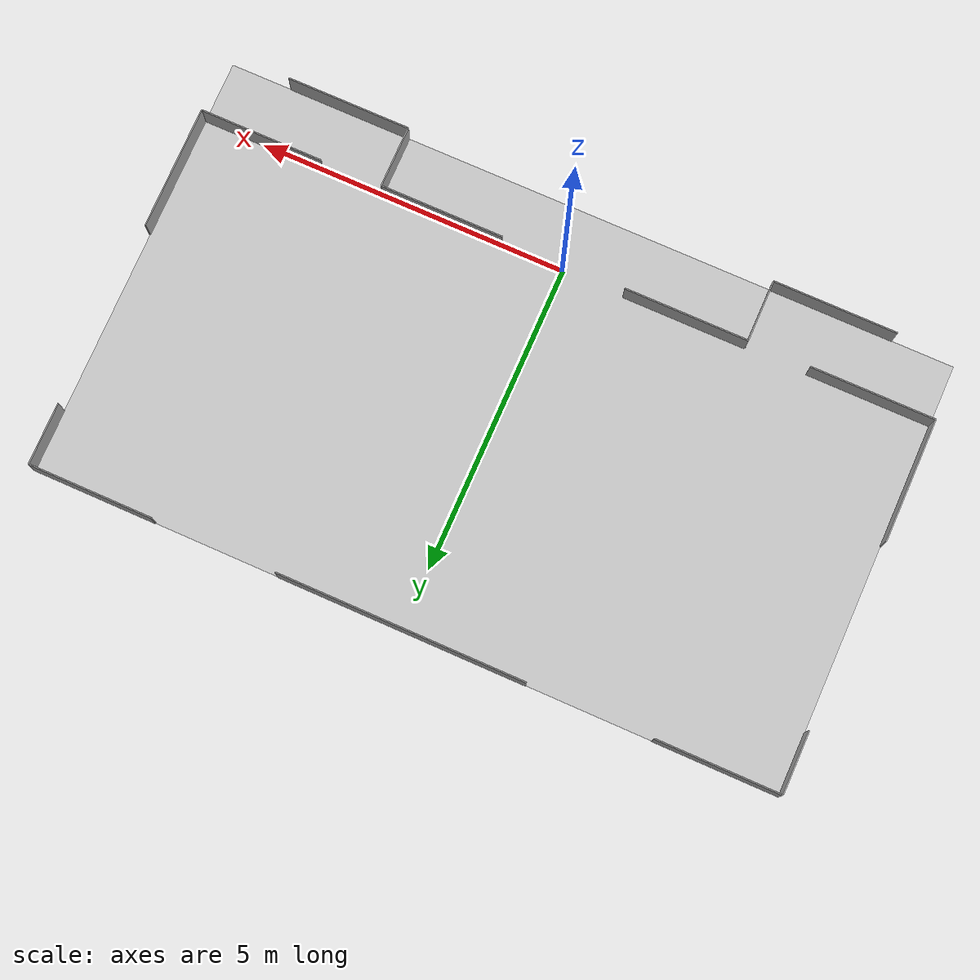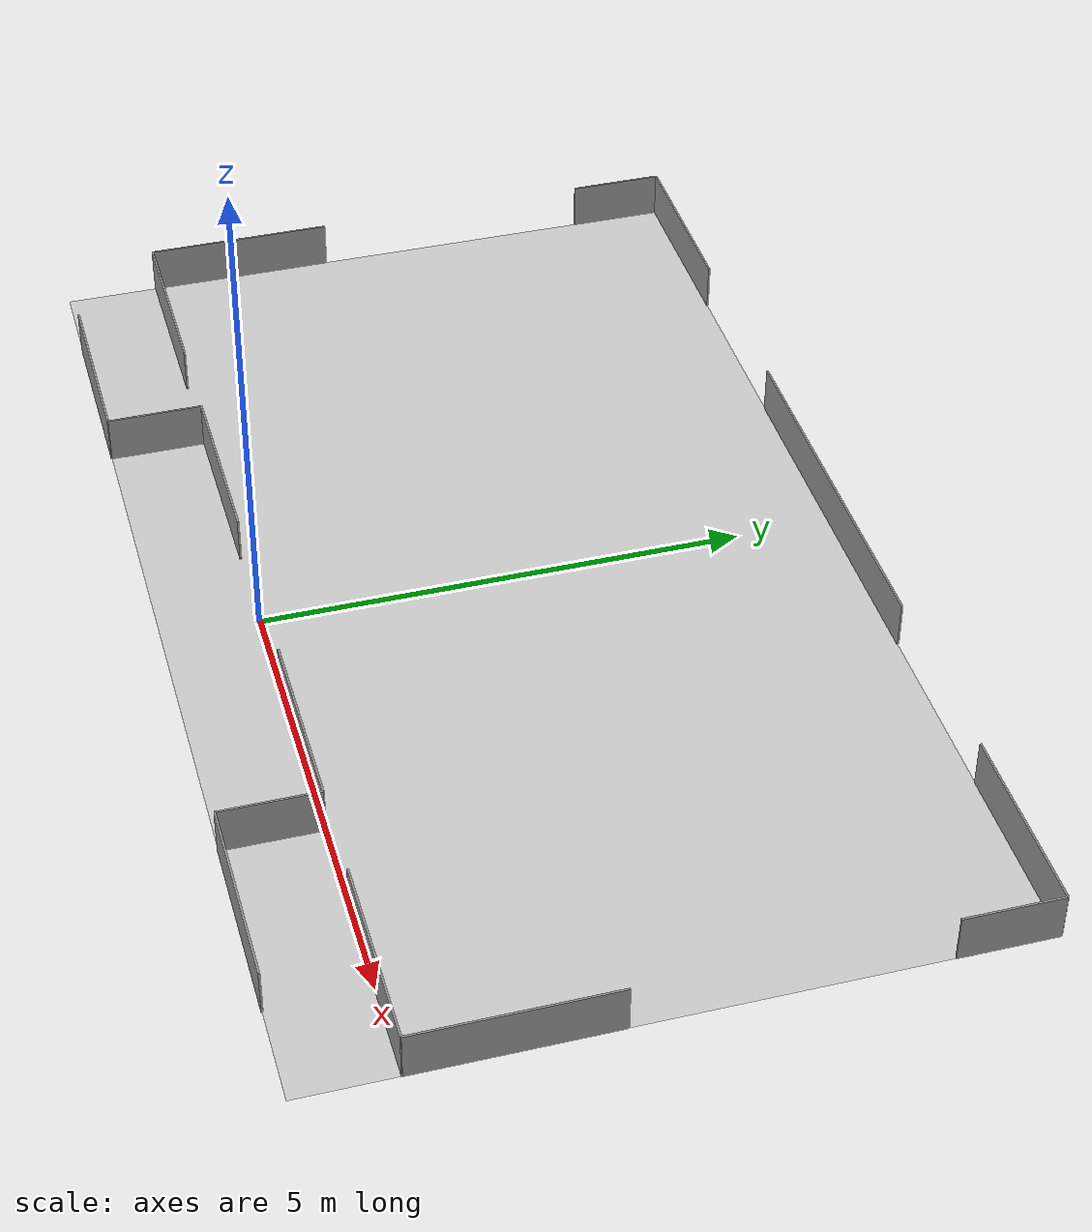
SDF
<?xml version="1.0" ?>
<sdf version="1.5">
  <model name="Logistics League Field 2016">
    <pose>0 2.5 0 0 0 0</pose>
    <static>true</static>
    <link name="field">
      <pose>0 0 0.01 0 0 0</pose>
      <collision name="collision">
        <geometry>
          <plane>
            <normal>0 0 1</normal>
            <size>12 7</size>
          </plane>
        </geometry>
        <surface>
          <friction>
            <ode>
              <mu>100</mu>
              <mu2>50</mu2>
            </ode>
          </friction>
        </surface>
      </collision>
      <visual name="carpet">
        <cast_shadows>false</cast_shadows>
        <geometry>
          <plane>
            <normal>0 0 1</normal>
            <size>12 7</size>
          </plane>
        </geometry>
        <material>
          <script>
            <uri>model://logistics_league_field/materials/scripts/</uri>
            <uri>model://logistics_league_field/materials/textures/</uri>
            <name>Logistics_League_Field/Image</name>
          </script>
        </material>
      </visual>
    </link>

    <link name="wall_bottom_middle_left">
      <pose>-2 -2.5 0.25 0 0 1.570796327</pose>
      <visual name="wall_bottom_middle_left-visual">
        <geometry>
          <box>
			<size>.02 2 .5</size>
          </box>
        </geometry>
        <cast_shadows>false</cast_shadows>
        <material>
	  <script>
	    <uri>file://media/materials/scripts/gazebo.material</uri>
	    <name>Gazebo/Grey</name>
	  </script>
        </material>
      </visual>
      <collision name="wall_bottom_middle_left-collision">
        <geometry>
		    <box>
			  <size>.02 2 .5</size>
		    </box>
        </geometry>
      </collision>
    </link>

    <link name="wall_bottom_middle_left_down">
      <pose>-3 -3 0.25 0 0 0</pose>
      <visual name="wall_bottom_middle_left_down-visual">
        <geometry>
          <box>
			<size>.02 1 .5</size>
          </box>
        </geometry>
        <cast_shadows>false</cast_shadows>
        <material>
	  <script>
	    <uri>file://media/materials/scripts/gazebo.material</uri>
	    <name>Gazebo/Grey</name>
	  </script>
        </material>
      </visual>
      <collision name="wall_bottom_middle_left_down-collision">
        <geometry>
		    <box>
			  <size>.02 1 .5</size>
		    </box>
        </geometry>
      </collision>
    </link>

    <link name="wall_bottom_middle_left_outer">
      <pose>-4 -3.5 0.25 0 0 1.570796327</pose>
      <visual name="wall_bottom_middle_left_outer-visual">
        <geometry>
          <box>
			<size>.02 2 .5</size>
          </box>
        </geometry>
        <cast_shadows>false</cast_shadows>
        <material>
	  <script>
	    <uri>file://media/materials/scripts/gazebo.material</uri>
	    <name>Gazebo/Grey</name>
	  </script>
        </material>
      </visual>
      <collision name="wall_bottom_middle_left_outer-collision">
        <geometry>
		    <box>
			  <size>.02 2 .5</size>
		    </box>
        </geometry>
      </collision>
    </link>

    <link name="wall_bottom_left">
      <pose>-5 -2.5 0.25 0 0 1.570796327</pose>
      <visual name="wall_bottom_left-visual">
        <geometry>
          <box>
			<size>.02 2 .5</size>
          </box>
        </geometry>
        <cast_shadows>false</cast_shadows>
        <material>
	  <script>
	    <uri>file://media/materials/scripts/gazebo.material</uri>
	    <name>Gazebo/Grey</name>
	  </script>
        </material>
      </visual>
      <collision name="wall_bottom_left-collision">
        <geometry>
		    <box>
			  <size>.02 2 .5</size>
		    </box>
        </geometry>
      </collision>
    </link>

    <link name="wall_bottom_middle_right">
      <pose>2 -2.5 0.25 0 0 1.570796327</pose>
      <visual name="wall_bottom_middle_right-visual">
        <geometry>
          <box>
			<size>.02 2 .5</size>
          </box>
        </geometry>
        <cast_shadows>false</cast_shadows>
        <material>
	  <script>
	    <uri>file://media/materials/scripts/gazebo.material</uri>
	    <name>Gazebo/Grey</name>
	  </script>
        </material>
      </visual>
      <collision name="wall_bottom_middle_right-collision">
        <geometry>
		    <box>
			  <size>.02 2 .5</size>
		    </box>
        </geometry>
      </collision>
    </link>

    <link name="wall_bottom_middle_right_down">
      <pose>3 -3 0.25 0 0 0</pose>
      <visual name="wall_bottom_middle_right_down-visual">
        <geometry>
          <box>
			<size>.02 1 .5</size>
          </box>
        </geometry>
        <cast_shadows>false</cast_shadows>
        <material>
	  <script>
	    <uri>file://media/materials/scripts/gazebo.material</uri>
	    <name>Gazebo/Grey</name>
	  </script>
        </material>
      </visual>
      <collision name="wall_bottom_middle_right_down-collision">
        <geometry>
		    <box>
			  <size>.02 1 .5</size>
		    </box>
        </geometry>
      </collision>
    </link>

    <link name="wall_bottom_middle_right_outer">
      <pose>4 -3.5 0.25 0 0 1.570796327</pose>
      <visual name="wall_bottom_middle_right_outer-visual">
        <geometry>
          <box>
			<size>.02 2 .5</size>
          </box>
        </geometry>
        <cast_shadows>false</cast_shadows>
        <material>
	  <script>
	    <uri>file://media/materials/scripts/gazebo.material</uri>
	    <name>Gazebo/Grey</name>
	  </script>
        </material>
      </visual>
      <collision name="wall_bottom_middle_right_outer-collision">
        <geometry>
		    <box>
			  <size>.02 2 .5</size>
		    </box>
        </geometry>
      </collision>
    </link>

    <link name="wall_bottom_right">
      <pose>5 -2.5 0.25 0 0 1.570796327</pose>
      <visual name="wall_bottom_right-visual">
        <geometry>
          <box>
			<size>.02 2 .5</size>
          </box>
        </geometry>
        <cast_shadows>false</cast_shadows>
        <material>
	  <script>
	    <uri>file://media/materials/scripts/gazebo.material</uri>
	    <name>Gazebo/Grey</name>
	  </script>
        </material>
      </visual>
      <collision name="wall_bottom_right-collision">
        <geometry>
		    <box>
			  <size>.02 2 .5</size>
		    </box>
        </geometry>
      </collision>
    </link>

    <link name="wall_left_bottom">
      <pose>-6 -1.5 0.25 0 0 0</pose>
      <visual name="wall_left_bottom-visual">
        <geometry>
          <box>
			<size>.02 2 .5</size>
          </box>
        </geometry>
        <cast_shadows>false</cast_shadows>
        <material>
	  <script>
	    <uri>file://media/materials/scripts/gazebo.material</uri>
	    <name>Gazebo/Grey</name>
	  </script>
        </material>
      </visual>
      <collision name="wall_left_bottom-collision">
        <geometry>
		    <box>
			  <size>.02 2 .5</size>
		    </box>
        </geometry>
      </collision>
    </link>

    <link name="wall_left_top">
      <pose>-6 3 0.25 0 0 0</pose>
      <visual name="wall_left_top-visual">
        <geometry>
          <box>
			<size>.02 1 .5</size>
          </box>
        </geometry>
        <cast_shadows>false</cast_shadows>
        <material>
	  <script>
	    <uri>file://media/materials/scripts/gazebo.material</uri>
	    <name>Gazebo/Grey</name>
	  </script>
        </material>
      </visual>
      <collision name="wall_left_top-collision">
        <geometry>
		    <box>
			  <size>.02 1 .5</size>
		    </box>
        </geometry>
      </collision>
    </link>

    <link name="wall_right_bottom">
      <pose>6 -1.5 0.25 0 0 0</pose>
      <visual name="wall_right_bottom-visual">
        <geometry>
          <box>
			<size>.02 2 .5</size>
          </box>
        </geometry>
        <cast_shadows>false</cast_shadows>
        <material>
	  <script>
	    <uri>file://media/materials/scripts/gazebo.material</uri>
	    <name>Gazebo/Grey</name>
	  </script>
        </material>
      </visual>
      <collision name="wall_right_bottom-collision">
        <geometry>
		    <box>
			  <size>.02 2 .5</size>
		    </box>
        </geometry>
      </collision>
    </link>

    <link name="wall_right_top">
      <pose>6 3 0.25 0 0 0</pose>
      <visual name="wall_right_top-visual">
        <geometry>
          <box>
			<size>.02 1 .5</size>
          </box>
        </geometry>
        <cast_shadows>false</cast_shadows>
        <material>
	  <script>
	    <uri>file://media/materials/scripts/gazebo.material</uri>
	    <name>Gazebo/Grey</name>
	  </script>
        </material>
      </visual>
      <collision name="wall_right_top-collision">
        <geometry>
		    <box>
			  <size>.02 1 .5</size>
		    </box>
        </geometry>
      </collision>
    </link>

    <link name="wall_top_middle">
      <pose>0 3.5 0.25 0 0 1.570796327</pose>
      <visual name="wall_top_middle-visual">
        <geometry>
          <box>
			<size>.02 4 .5</size>
          </box>
        </geometry>
        <cast_shadows>false</cast_shadows>
        <material>
	  <script>
	    <uri>file://media/materials/scripts/gazebo.material</uri>
	    <name>Gazebo/Grey</name>
	  </script>
        </material>
      </visual>
      <collision name="wall_top_middle-collision">
        <geometry>
		    <box>
			  <size>.02 4 .5</size>
		    </box>
        </geometry>
      </collision>
    </link>

    <link name="wall_top_left">
      <pose>-5 3.5 0.25 0 0 1.570796327</pose>
      <visual name="wall_top_left-visual">
        <geometry>
          <box>
			<size>.02 2 .5</size>
          </box>
        </geometry>
        <cast_shadows>false</cast_shadows>
        <material>
	  <script>
	    <uri>file://media/materials/scripts/gazebo.material</uri>
	    <name>Gazebo/Grey</name>
	  </script>
        </material>
      </visual>
      <collision name="wall_top_left-collision">
        <geometry>
		    <box>
			  <size>.02 2 .5</size>
		    </box>
        </geometry>
      </collision>
    </link>

    <link name="wall_top_right">
      <pose>5 3.5 0.25 0 0 1.570796327</pose>
      <visual name="wall_top_right-visual">
        <geometry>
          <box>
			<size>.02 2 .5</size>
          </box>
        </geometry>
        <cast_shadows>false</cast_shadows>
        <material>
	  <script>
	    <uri>file://media/materials/scripts/gazebo.material</uri>
	    <name>Gazebo/Grey</name>
	  </script>
        </material>
      </visual>
      <collision name="wall_top_right-collision">
        <geometry>
		    <box>
			  <size>.02 2 .5</size>
		    </box>
        </geometry>
      </collision>
    </link>

  </model>
</sdf>
